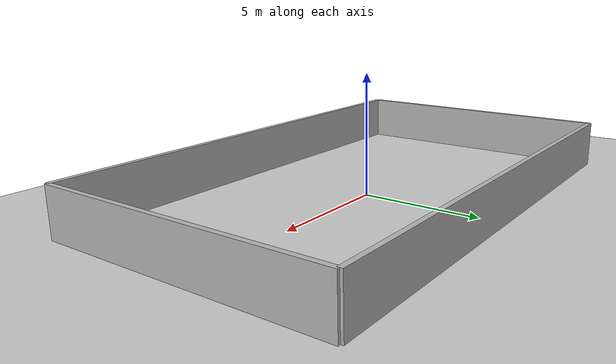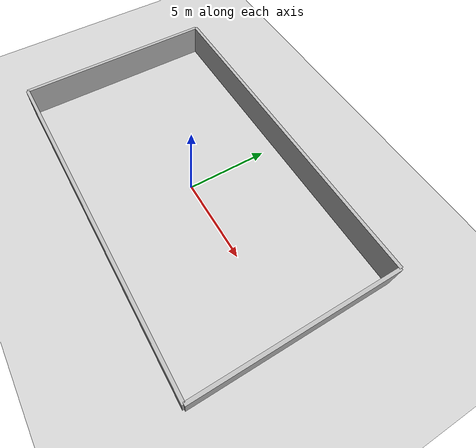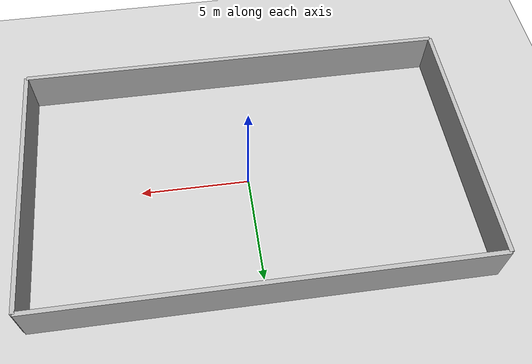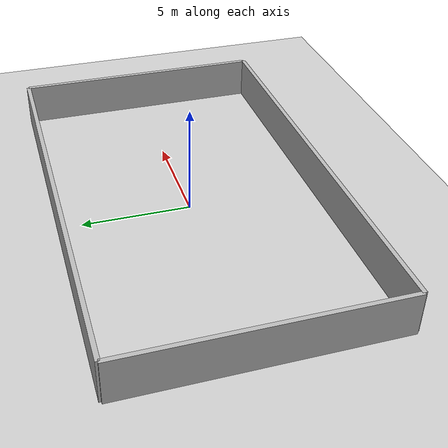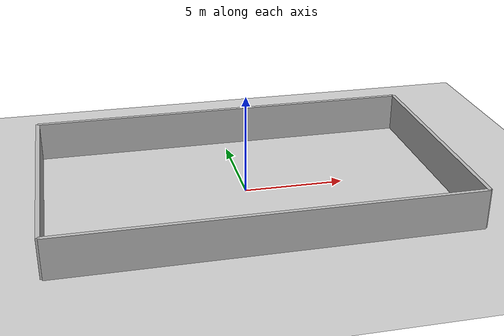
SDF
<?xml version="1.0" ?>
<sdf version="1.8">

  <world name="robot_model_world">

<plugin
  filename="gz-sim-physics-system"
  name="gz::sim::systems::Physics"/>

<plugin
  filename="gz-sim-scene-broadcaster-system"
  name="gz::sim::systems::SceneBroadcaster"/>

<plugin
  filename="gz-sim-user-commands-system"
  name="gz::sim::systems::UserCommands"/>

<plugin
  filename="gz-sim-sensors-system"
  name="gz::sim::systems::Sensors">
  <render_engine>ogre2</render_engine>
</plugin>

    <!-- Physics -->
    <physics name="physics" type="ode">
      <max_step_size>0.001</max_step_size>
      <real_time_factor>1.0</real_time_factor>
      <real_time_update_rate>1000</real_time_update_rate>
    </physics>

    <!-- Gravity -->
    <gravity>0 0 -9.81</gravity>

    <!-- Scene -->
    <scene>
      <ambient>0.8 0.8 0.8 1</ambient>
      <background>0.7 0.7 0.7 1</background>
      <shadows>true</shadows>
    </scene>

    <!-- Sun -->
    <light name="sun" type="directional">
      <cast_shadows>true</cast_shadows>
      <pose>0 0 20 0 0 0</pose>

      <diffuse>0.9 0.9 0.9 1</diffuse>
      <specular>0.2 0.2 0.2 1</specular>

      <attenuation>
        <range>1000</range>
        <constant>0.9</constant>
        <linear>0.01</linear>
        <quadratic>0.001</quadratic>
      </attenuation>

      <direction>-0.5 0.1 -0.9</direction>
    </light>

    <!-- Ground Plane -->
    <model name="ground_plane">

      <static>true</static>

      <link name="link">

        <collision name="collision">
          <geometry>
            <plane>
              <normal>0 0 1</normal>
              <size>50 50</size>
            </plane>
          </geometry>
        </collision>

        <visual name="visual">
          <geometry>
            <plane>
              <normal>0 0 1</normal>
              <size>50 50</size>
            </plane>
          </geometry>

          <material>
            <ambient>0.8 0.8 0.8 1</ambient>
            <diffuse>0.8 0.8 0.8 1</diffuse>
          </material>

        </visual>

      </link>

    </model>

    <!-- FRONT WALL -->
    <model name="front_wall">
      <static>true</static>

      <pose>0 6 1 0 0 0</pose>

      <link name="link">

        <collision name="collision">
          <geometry>
            <box>
              <size>20 0.2 2</size>
            </box>
          </geometry>
        </collision>

        <visual name="visual">
          <geometry>
            <box>
              <size>20 0.2 2</size>
            </box>
          </geometry>
        </visual>

      </link>

    </model>

    <!-- REAR WALL -->
    <model name="rear_wall">
      <static>true</static>

      <pose>0 -6 1 0 0 0</pose>

      <link name="link">

        <collision name="collision">
          <geometry>
            <box>
              <size>20 0.2 2</size>
            </box>
          </geometry>
        </collision>

        <visual name="visual">
          <geometry>
            <box>
              <size>20 0.2 2</size>
            </box>
          </geometry>
        </visual>

      </link>

    </model>

    <!-- LEFT WALL -->
    <model name="left_wall">
      <static>true</static>

      <pose>-10 0 1 0 0 0</pose>

      <link name="link">

        <collision name="collision">
          <geometry>
            <box>
              <size>0.2 12 2</size>
            </box>
          </geometry>
        </collision>

        <visual name="visual">
          <geometry>
            <box>
              <size>0.2 12 2</size>
            </box>
          </geometry>
        </visual>

      </link>

    </model>

    <!-- RIGHT WALL -->
    <model name="right_wall">
      <static>true</static>

      <pose>10 0 1 0 0 0</pose>

      <link name="link">

        <collision name="collision">
          <geometry>
            <box>
              <size>0.2 12 2</size>
            </box>
          </geometry>
        </collision>

        <visual name="visual">
          <geometry>
            <box>
              <size>0.2 12 2</size>
            </box>
          </geometry>
        </visual>

      </link>

    </model>

  </world>

</sdf>
